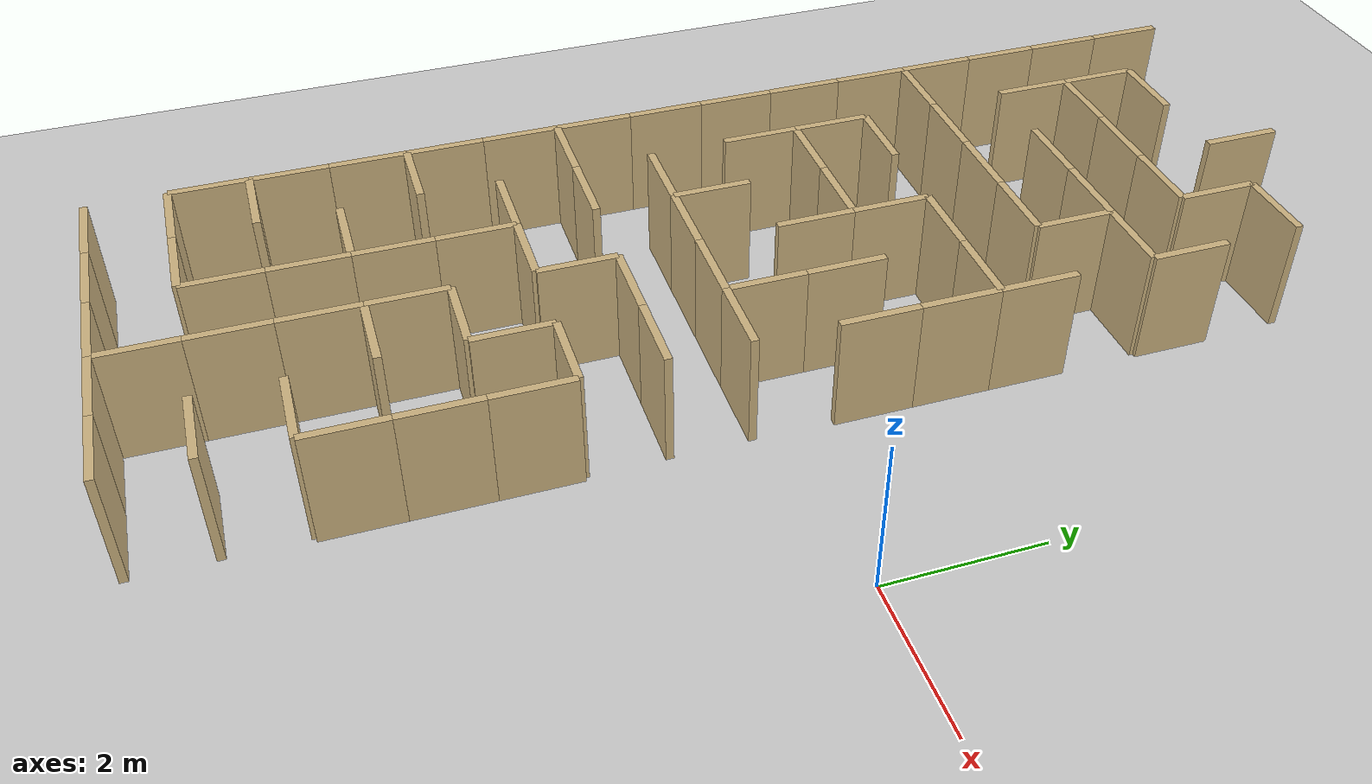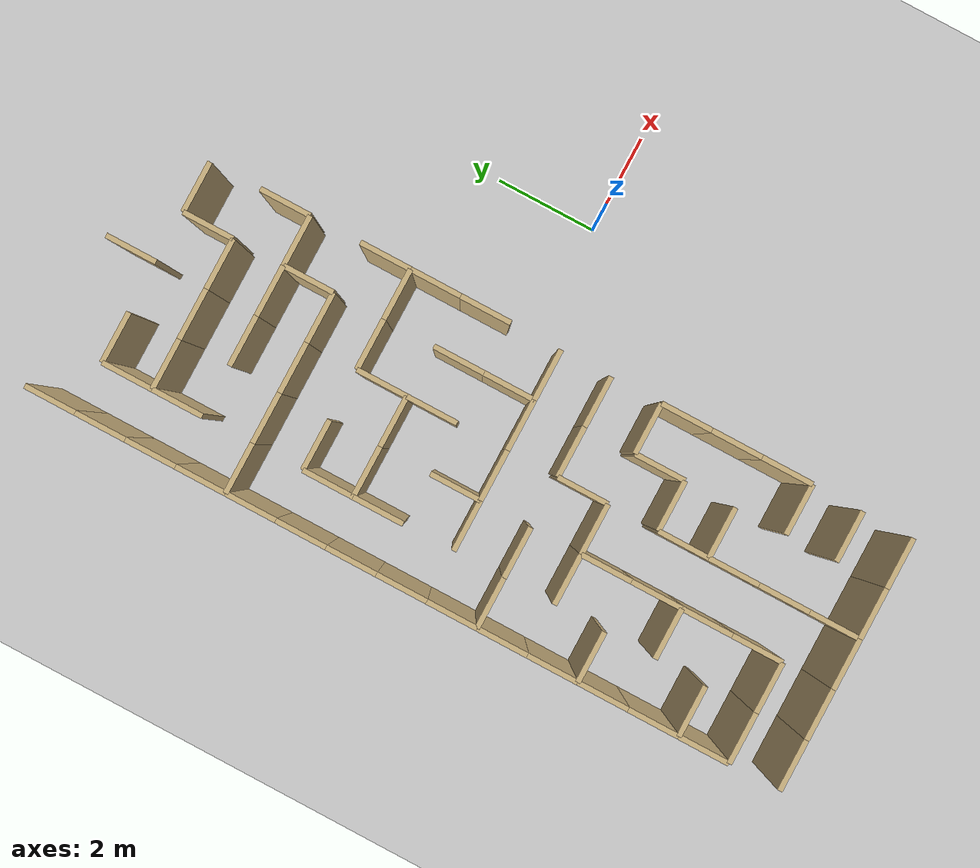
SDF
<sdf version="1.9">
 <world name="maze">
  <model name="ground_plane">
   <static>true</static>
   <link name="link">
    <collision name="collision">
     <geometry><plane><normal>0 0 1</normal><size>100 100</size></plane></geometry>
    </collision>
    <visual name="visual"><geometry><plane><normal>0 0 1</normal><size>100 100</size></plane></geometry></visual>
   </link>
  </model>
  <model name="wall_0">
   <static>true</static>
   <pose>-7.0 -7.5 0.75 0 0 0</pose>
   <link name="link">
    <collision name="collision"><geometry><box><size>1.0 0.1 1.5</size></box></geometry></collision>
    <visual name="visual">
     <geometry><box><size>1.0 0.1 1.5</size></box></geometry>
     <material>
      <ambient>0.8 0.7 0.5 1</ambient>
      <diffuse>0.8 0.7 0.5 1</diffuse>
      <specular>0.05 0.05 0.05 1</specular>
     </material>
    </visual>
   </link>
  </model>
  <model name="wall_1">
   <static>true</static>
   <pose>-6.0 -7.5 0.75 0 0 0</pose>
   <link name="link">
    <collision name="collision"><geometry><box><size>1.0 0.1 1.5</size></box></geometry></collision>
    <visual name="visual">
     <geometry><box><size>1.0 0.1 1.5</size></box></geometry>
     <material>
      <ambient>0.8 0.7 0.5 1</ambient>
      <diffuse>0.8 0.7 0.5 1</diffuse>
      <specular>0.05 0.05 0.05 1</specular>
     </material>
    </visual>
   </link>
  </model>
  <model name="wall_2">
   <static>true</static>
   <pose>-5.0 -7.5 0.75 0 0 0</pose>
   <link name="link">
    <collision name="collision"><geometry><box><size>1.0 0.1 1.5</size></box></geometry></collision>
    <visual name="visual">
     <geometry><box><size>1.0 0.1 1.5</size></box></geometry>
     <material>
      <ambient>0.8 0.7 0.5 1</ambient>
      <diffuse>0.8 0.7 0.5 1</diffuse>
      <specular>0.05 0.05 0.05 1</specular>
     </material>
    </visual>
   </link>
  </model>
  <model name="wall_3">
   <static>true</static>
   <pose>-4.0 -7.5 0.75 0 0 0</pose>
   <link name="link">
    <collision name="collision"><geometry><box><size>1.0 0.1 1.5</size></box></geometry></collision>
    <visual name="visual">
     <geometry><box><size>1.0 0.1 1.5</size></box></geometry>
     <material>
      <ambient>0.8 0.7 0.5 1</ambient>
      <diffuse>0.8 0.7 0.5 1</diffuse>
      <specular>0.05 0.05 0.05 1</specular>
     </material>
    </visual>
   </link>
  </model>
  <model name="wall_4">
   <static>true</static>
   <pose>-4.5 -7.0 0.75 0 0 0</pose>
   <link name="link">
    <collision name="collision"><geometry><box><size>0.1 1.0 1.5</size></box></geometry></collision>
    <visual name="visual">
     <geometry><box><size>0.1 1.0 1.5</size></box></geometry>
     <material>
      <ambient>0.8 0.7 0.5 1</ambient>
      <diffuse>0.8 0.7 0.5 1</diffuse>
      <specular>0.05 0.05 0.05 1</specular>
     </material>
    </visual>
   </link>
  </model>
  <model name="wall_5">
   <static>true</static>
   <pose>-3.0 -7.5 0.75 0 0 0</pose>
   <link name="link">
    <collision name="collision"><geometry><box><size>1.0 0.1 1.5</size></box></geometry></collision>
    <visual name="visual">
     <geometry><box><size>1.0 0.1 1.5</size></box></geometry>
     <material>
      <ambient>0.8 0.7 0.5 1</ambient>
      <diffuse>0.8 0.7 0.5 1</diffuse>
      <specular>0.05 0.05 0.05 1</specular>
     </material>
    </visual>
   </link>
  </model>
  <model name="wall_20">
   <static>true</static>
   <pose>-7.0 -6.5 0.75 0 0 0</pose>
   <link name="link">
    <collision name="collision"><geometry><box><size>1.0 0.1 1.5</size></box></geometry></collision>
    <visual name="visual">
     <geometry><box><size>1.0 0.1 1.5</size></box></geometry>
     <material>
      <ambient>0.8 0.7 0.5 1</ambient>
      <diffuse>0.8 0.7 0.5 1</diffuse>
      <specular>0.05 0.05 0.05 1</specular>
     </material>
    </visual>
   </link>
  </model>
  <model name="wall_21">
   <static>true</static>
   <pose>-7.5 -6.0 0.75 0 0 0</pose>
   <link name="link">
    <collision name="collision"><geometry><box><size>0.1 1.0 1.5</size></box></geometry></collision>
    <visual name="visual">
     <geometry><box><size>0.1 1.0 1.5</size></box></geometry>
     <material>
      <ambient>0.8 0.7 0.5 1</ambient>
      <diffuse>0.8 0.7 0.5 1</diffuse>
      <specular>0.05 0.05 0.05 1</specular>
     </material>
    </visual>
   </link>
  </model>
  <model name="wall_22">
   <static>true</static>
   <pose>-6.0 -6.5 0.75 0 0 0</pose>
   <link name="link">
    <collision name="collision"><geometry><box><size>1.0 0.1 1.5</size></box></geometry></collision>
    <visual name="visual">
     <geometry><box><size>1.0 0.1 1.5</size></box></geometry>
     <material>
      <ambient>0.8 0.7 0.5 1</ambient>
      <diffuse>0.8 0.7 0.5 1</diffuse>
      <specular>0.05 0.05 0.05 1</specular>
     </material>
    </visual>
   </link>
  </model>
  <model name="wall_23">
   <static>true</static>
   <pose>-5.5 -6.0 0.75 0 0 0</pose>
   <link name="link">
    <collision name="collision"><geometry><box><size>0.1 1.0 1.5</size></box></geometry></collision>
    <visual name="visual">
     <geometry><box><size>0.1 1.0 1.5</size></box></geometry>
     <material>
      <ambient>0.8 0.7 0.5 1</ambient>
      <diffuse>0.8 0.7 0.5 1</diffuse>
      <specular>0.05 0.05 0.05 1</specular>
     </material>
    </visual>
   </link>
  </model>
  <model name="wall_24">
   <static>true</static>
   <pose>-4.5 -6.0 0.75 0 0 0</pose>
   <link name="link">
    <collision name="collision"><geometry><box><size>0.1 1.0 1.5</size></box></geometry></collision>
    <visual name="visual">
     <geometry><box><size>0.1 1.0 1.5</size></box></geometry>
     <material>
      <ambient>0.8 0.7 0.5 1</ambient>
      <diffuse>0.8 0.7 0.5 1</diffuse>
      <specular>0.05 0.05 0.05 1</specular>
     </material>
    </visual>
   </link>
  </model>
  <model name="wall_25">
   <static>true</static>
   <pose>-3.0 -6.5 0.75 0 0 0</pose>
   <link name="link">
    <collision name="collision"><geometry><box><size>1.0 0.1 1.5</size></box></geometry></collision>
    <visual name="visual">
     <geometry><box><size>1.0 0.1 1.5</size></box></geometry>
     <material>
      <ambient>0.8 0.7 0.5 1</ambient>
      <diffuse>0.8 0.7 0.5 1</diffuse>
      <specular>0.05 0.05 0.05 1</specular>
     </material>
    </visual>
   </link>
  </model>
  <model name="wall_35">
   <static>true</static>
   <pose>-7.0 -5.5 0.75 0 0 0</pose>
   <link name="link">
    <collision name="collision"><geometry><box><size>1.0 0.1 1.5</size></box></geometry></collision>
    <visual name="visual">
     <geometry><box><size>1.0 0.1 1.5</size></box></geometry>
     <material>
      <ambient>0.8 0.7 0.5 1</ambient>
      <diffuse>0.8 0.7 0.5 1</diffuse>
      <specular>0.05 0.05 0.05 1</specular>
     </material>
    </visual>
   </link>
  </model>
  <model name="wall_36">
   <static>true</static>
   <pose>-7.5 -5.0 0.75 0 0 0</pose>
   <link name="link">
    <collision name="collision"><geometry><box><size>0.1 1.0 1.5</size></box></geometry></collision>
    <visual name="visual">
     <geometry><box><size>0.1 1.0 1.5</size></box></geometry>
     <material>
      <ambient>0.8 0.7 0.5 1</ambient>
      <diffuse>0.8 0.7 0.5 1</diffuse>
      <specular>0.05 0.05 0.05 1</specular>
     </material>
    </visual>
   </link>
  </model>
  <model name="wall_37">
   <static>true</static>
   <pose>-5.5 -5.0 0.75 0 0 0</pose>
   <link name="link">
    <collision name="collision"><geometry><box><size>0.1 1.0 1.5</size></box></geometry></collision>
    <visual name="visual">
     <geometry><box><size>0.1 1.0 1.5</size></box></geometry>
     <material>
      <ambient>0.8 0.7 0.5 1</ambient>
      <diffuse>0.8 0.7 0.5 1</diffuse>
      <specular>0.05 0.05 0.05 1</specular>
     </material>
    </visual>
   </link>
  </model>
  <model name="wall_38">
   <static>true</static>
   <pose>-4.5 -5.0 0.75 0 0 0</pose>
   <link name="link">
    <collision name="collision"><geometry><box><size>0.1 1.0 1.5</size></box></geometry></collision>
    <visual name="visual">
     <geometry><box><size>0.1 1.0 1.5</size></box></geometry>
     <material>
      <ambient>0.8 0.7 0.5 1</ambient>
      <diffuse>0.8 0.7 0.5 1</diffuse>
      <specular>0.05 0.05 0.05 1</specular>
     </material>
    </visual>
   </link>
  </model>
  <model name="wall_39">
   <static>true</static>
   <pose>-3.0 -5.5 0.75 0 0 0</pose>
   <link name="link">
    <collision name="collision"><geometry><box><size>1.0 0.1 1.5</size></box></geometry></collision>
    <visual name="visual">
     <geometry><box><size>1.0 0.1 1.5</size></box></geometry>
     <material>
      <ambient>0.8 0.7 0.5 1</ambient>
      <diffuse>0.8 0.7 0.5 1</diffuse>
      <specular>0.05 0.05 0.05 1</specular>
     </material>
    </visual>
   </link>
  </model>
  <model name="wall_40">
   <static>true</static>
   <pose>-2.5 -5.0 0.75 0 0 0</pose>
   <link name="link">
    <collision name="collision"><geometry><box><size>0.1 1.0 1.5</size></box></geometry></collision>
    <visual name="visual">
     <geometry><box><size>0.1 1.0 1.5</size></box></geometry>
     <material>
      <ambient>0.8 0.7 0.5 1</ambient>
      <diffuse>0.8 0.7 0.5 1</diffuse>
      <specular>0.05 0.05 0.05 1</specular>
     </material>
    </visual>
   </link>
  </model>
  <model name="wall_48">
   <static>true</static>
   <pose>-7.5 -4.0 0.75 0 0 0</pose>
   <link name="link">
    <collision name="collision"><geometry><box><size>0.1 1.0 1.5</size></box></geometry></collision>
    <visual name="visual">
     <geometry><box><size>0.1 1.0 1.5</size></box></geometry>
     <material>
      <ambient>0.8 0.7 0.5 1</ambient>
      <diffuse>0.8 0.7 0.5 1</diffuse>
      <specular>0.05 0.05 0.05 1</specular>
     </material>
    </visual>
   </link>
  </model>
  <model name="wall_49">
   <static>true</static>
   <pose>-6.0 -4.5 0.75 0 0 0</pose>
   <link name="link">
    <collision name="collision"><geometry><box><size>1.0 0.1 1.5</size></box></geometry></collision>
    <visual name="visual">
     <geometry><box><size>1.0 0.1 1.5</size></box></geometry>
     <material>
      <ambient>0.8 0.7 0.5 1</ambient>
      <diffuse>0.8 0.7 0.5 1</diffuse>
      <specular>0.05 0.05 0.05 1</specular>
     </material>
    </visual>
   </link>
  </model>
  <model name="wall_50">
   <static>true</static>
   <pose>-5.5 -4.0 0.75 0 0 0</pose>
   <link name="link">
    <collision name="collision"><geometry><box><size>0.1 1.0 1.5</size></box></geometry></collision>
    <visual name="visual">
     <geometry><box><size>0.1 1.0 1.5</size></box></geometry>
     <material>
      <ambient>0.8 0.7 0.5 1</ambient>
      <diffuse>0.8 0.7 0.5 1</diffuse>
      <specular>0.05 0.05 0.05 1</specular>
     </material>
    </visual>
   </link>
  </model>
  <model name="wall_51">
   <static>true</static>
   <pose>-4.0 -4.5 0.75 0 0 0</pose>
   <link name="link">
    <collision name="collision"><geometry><box><size>1.0 0.1 1.5</size></box></geometry></collision>
    <visual name="visual">
     <geometry><box><size>1.0 0.1 1.5</size></box></geometry>
     <material>
      <ambient>0.8 0.7 0.5 1</ambient>
      <diffuse>0.8 0.7 0.5 1</diffuse>
      <specular>0.05 0.05 0.05 1</specular>
     </material>
    </visual>
   </link>
  </model>
  <model name="wall_52">
   <static>true</static>
   <pose>-4.5 -4.0 0.75 0 0 0</pose>
   <link name="link">
    <collision name="collision"><geometry><box><size>0.1 1.0 1.5</size></box></geometry></collision>
    <visual name="visual">
     <geometry><box><size>0.1 1.0 1.5</size></box></geometry>
     <material>
      <ambient>0.8 0.7 0.5 1</ambient>
      <diffuse>0.8 0.7 0.5 1</diffuse>
      <specular>0.05 0.05 0.05 1</specular>
     </material>
    </visual>
   </link>
  </model>
  <model name="wall_53">
   <static>true</static>
   <pose>-2.5 -4.0 0.75 0 0 0</pose>
   <link name="link">
    <collision name="collision"><geometry><box><size>0.1 1.0 1.5</size></box></geometry></collision>
    <visual name="visual">
     <geometry><box><size>0.1 1.0 1.5</size></box></geometry>
     <material>
      <ambient>0.8 0.7 0.5 1</ambient>
      <diffuse>0.8 0.7 0.5 1</diffuse>
      <specular>0.05 0.05 0.05 1</specular>
     </material>
    </visual>
   </link>
  </model>
  <model name="wall_64">
   <static>true</static>
   <pose>-7.0 -3.5 0.75 0 0 0</pose>
   <link name="link">
    <collision name="collision"><geometry><box><size>1.0 0.1 1.5</size></box></geometry></collision>
    <visual name="visual">
     <geometry><box><size>1.0 0.1 1.5</size></box></geometry>
     <material>
      <ambient>0.8 0.7 0.5 1</ambient>
      <diffuse>0.8 0.7 0.5 1</diffuse>
      <specular>0.05 0.05 0.05 1</specular>
     </material>
    </visual>
   </link>
  </model>
  <model name="wall_65">
   <static>true</static>
   <pose>-7.5 -3.0 0.75 0 0 0</pose>
   <link name="link">
    <collision name="collision"><geometry><box><size>0.1 1.0 1.5</size></box></geometry></collision>
    <visual name="visual">
     <geometry><box><size>0.1 1.0 1.5</size></box></geometry>
     <material>
      <ambient>0.8 0.7 0.5 1</ambient>
      <diffuse>0.8 0.7 0.5 1</diffuse>
      <specular>0.05 0.05 0.05 1</specular>
     </material>
    </visual>
   </link>
  </model>
  <model name="wall_66">
   <static>true</static>
   <pose>-5.5 -3.0 0.75 0 0 0</pose>
   <link name="link">
    <collision name="collision"><geometry><box><size>0.1 1.0 1.5</size></box></geometry></collision>
    <visual name="visual">
     <geometry><box><size>0.1 1.0 1.5</size></box></geometry>
     <material>
      <ambient>0.8 0.7 0.5 1</ambient>
      <diffuse>0.8 0.7 0.5 1</diffuse>
      <specular>0.05 0.05 0.05 1</specular>
     </material>
    </visual>
   </link>
  </model>
  <model name="wall_67">
   <static>true</static>
   <pose>-4.0 -3.5 0.75 0 0 0</pose>
   <link name="link">
    <collision name="collision"><geometry><box><size>1.0 0.1 1.5</size></box></geometry></collision>
    <visual name="visual">
     <geometry><box><size>1.0 0.1 1.5</size></box></geometry>
     <material>
      <ambient>0.8 0.7 0.5 1</ambient>
      <diffuse>0.8 0.7 0.5 1</diffuse>
      <specular>0.05 0.05 0.05 1</specular>
     </material>
    </visual>
   </link>
  </model>
  <model name="wall_68">
   <static>true</static>
   <pose>-3.5 -3.0 0.75 0 0 0</pose>
   <link name="link">
    <collision name="collision"><geometry><box><size>0.1 1.0 1.5</size></box></geometry></collision>
    <visual name="visual">
     <geometry><box><size>0.1 1.0 1.5</size></box></geometry>
     <material>
      <ambient>0.8 0.7 0.5 1</ambient>
      <diffuse>0.8 0.7 0.5 1</diffuse>
      <specular>0.05 0.05 0.05 1</specular>
     </material>
    </visual>
   </link>
  </model>
  <model name="wall_69">
   <static>true</static>
   <pose>-2.5 -3.0 0.75 0 0 0</pose>
   <link name="link">
    <collision name="collision"><geometry><box><size>0.1 1.0 1.5</size></box></geometry></collision>
    <visual name="visual">
     <geometry><box><size>0.1 1.0 1.5</size></box></geometry>
     <material>
      <ambient>0.8 0.7 0.5 1</ambient>
      <diffuse>0.8 0.7 0.5 1</diffuse>
      <specular>0.05 0.05 0.05 1</specular>
     </material>
    </visual>
   </link>
  </model>
  <model name="wall_78">
   <static>true</static>
   <pose>-7.5 -2.0 0.75 0 0 0</pose>
   <link name="link">
    <collision name="collision"><geometry><box><size>0.1 1.0 1.5</size></box></geometry></collision>
    <visual name="visual">
     <geometry><box><size>0.1 1.0 1.5</size></box></geometry>
     <material>
      <ambient>0.8 0.7 0.5 1</ambient>
      <diffuse>0.8 0.7 0.5 1</diffuse>
      <specular>0.05 0.05 0.05 1</specular>
     </material>
    </visual>
   </link>
  </model>
  <model name="wall_79">
   <static>true</static>
   <pose>-6.0 -2.5 0.75 0 0 0</pose>
   <link name="link">
    <collision name="collision"><geometry><box><size>1.0 0.1 1.5</size></box></geometry></collision>
    <visual name="visual">
     <geometry><box><size>1.0 0.1 1.5</size></box></geometry>
     <material>
      <ambient>0.8 0.7 0.5 1</ambient>
      <diffuse>0.8 0.7 0.5 1</diffuse>
      <specular>0.05 0.05 0.05 1</specular>
     </material>
    </visual>
   </link>
  </model>
  <model name="wall_80">
   <static>true</static>
   <pose>-5.0 -2.5 0.75 0 0 0</pose>
   <link name="link">
    <collision name="collision"><geometry><box><size>1.0 0.1 1.5</size></box></geometry></collision>
    <visual name="visual">
     <geometry><box><size>1.0 0.1 1.5</size></box></geometry>
     <material>
      <ambient>0.8 0.7 0.5 1</ambient>
      <diffuse>0.8 0.7 0.5 1</diffuse>
      <specular>0.05 0.05 0.05 1</specular>
     </material>
    </visual>
   </link>
  </model>
  <model name="wall_81">
   <static>true</static>
   <pose>-4.5 -2.0 0.75 0 0 0</pose>
   <link name="link">
    <collision name="collision"><geometry><box><size>0.1 1.0 1.5</size></box></geometry></collision>
    <visual name="visual">
     <geometry><box><size>0.1 1.0 1.5</size></box></geometry>
     <material>
      <ambient>0.8 0.7 0.5 1</ambient>
      <diffuse>0.8 0.7 0.5 1</diffuse>
      <specular>0.05 0.05 0.05 1</specular>
     </material>
    </visual>
   </link>
  </model>
  <model name="wall_82">
   <static>true</static>
   <pose>-3.0 -2.5 0.75 0 0 0</pose>
   <link name="link">
    <collision name="collision"><geometry><box><size>1.0 0.1 1.5</size></box></geometry></collision>
    <visual name="visual">
     <geometry><box><size>1.0 0.1 1.5</size></box></geometry>
     <material>
      <ambient>0.8 0.7 0.5 1</ambient>
      <diffuse>0.8 0.7 0.5 1</diffuse>
      <specular>0.05 0.05 0.05 1</specular>
     </material>
    </visual>
   </link>
  </model>
  <model name="wall_94">
   <static>true</static>
   <pose>-7.0 -1.5 0.75 0 0 0</pose>
   <link name="link">
    <collision name="collision"><geometry><box><size>1.0 0.1 1.5</size></box></geometry></collision>
    <visual name="visual">
     <geometry><box><size>1.0 0.1 1.5</size></box></geometry>
     <material>
      <ambient>0.8 0.7 0.5 1</ambient>
      <diffuse>0.8 0.7 0.5 1</diffuse>
      <specular>0.05 0.05 0.05 1</specular>
     </material>
    </visual>
   </link>
  </model>
  <model name="wall_95">
   <static>true</static>
   <pose>-7.5 -1.0 0.75 0 0 0</pose>
   <link name="link">
    <collision name="collision"><geometry><box><size>0.1 1.0 1.5</size></box></geometry></collision>
    <visual name="visual">
     <geometry><box><size>0.1 1.0 1.5</size></box></geometry>
     <material>
      <ambient>0.8 0.7 0.5 1</ambient>
      <diffuse>0.8 0.7 0.5 1</diffuse>
      <specular>0.05 0.05 0.05 1</specular>
     </material>
    </visual>
   </link>
  </model>
  <model name="wall_96">
   <static>true</static>
   <pose>-6.0 -1.5 0.75 0 0 0</pose>
   <link name="link">
    <collision name="collision"><geometry><box><size>1.0 0.1 1.5</size></box></geometry></collision>
    <visual name="visual">
     <geometry><box><size>1.0 0.1 1.5</size></box></geometry>
     <material>
      <ambient>0.8 0.7 0.5 1</ambient>
      <diffuse>0.8 0.7 0.5 1</diffuse>
      <specular>0.05 0.05 0.05 1</specular>
     </material>
    </visual>
   </link>
  </model>
  <model name="wall_97">
   <static>true</static>
   <pose>-4.0 -1.5 0.75 0 0 0</pose>
   <link name="link">
    <collision name="collision"><geometry><box><size>1.0 0.1 1.5</size></box></geometry></collision>
    <visual name="visual">
     <geometry><box><size>1.0 0.1 1.5</size></box></geometry>
     <material>
      <ambient>0.8 0.7 0.5 1</ambient>
      <diffuse>0.8 0.7 0.5 1</diffuse>
      <specular>0.05 0.05 0.05 1</specular>
     </material>
    </visual>
   </link>
  </model>
  <model name="wall_98">
   <static>true</static>
   <pose>-3.0 -1.5 0.75 0 0 0</pose>
   <link name="link">
    <collision name="collision"><geometry><box><size>1.0 0.1 1.5</size></box></geometry></collision>
    <visual name="visual">
     <geometry><box><size>1.0 0.1 1.5</size></box></geometry>
     <material>
      <ambient>0.8 0.7 0.5 1</ambient>
      <diffuse>0.8 0.7 0.5 1</diffuse>
      <specular>0.05 0.05 0.05 1</specular>
     </material>
    </visual>
   </link>
  </model>
  <model name="wall_108">
   <static>true</static>
   <pose>-7.5 0.0 0.75 0 0 0</pose>
   <link name="link">
    <collision name="collision"><geometry><box><size>0.1 1.0 1.5</size></box></geometry></collision>
    <visual name="visual">
     <geometry><box><size>0.1 1.0 1.5</size></box></geometry>
     <material>
      <ambient>0.8 0.7 0.5 1</ambient>
      <diffuse>0.8 0.7 0.5 1</diffuse>
      <specular>0.05 0.05 0.05 1</specular>
     </material>
    </visual>
   </link>
  </model>
  <model name="wall_109">
   <static>true</static>
   <pose>-6.0 -0.5 0.75 0 0 0</pose>
   <link name="link">
    <collision name="collision"><geometry><box><size>1.0 0.1 1.5</size></box></geometry></collision>
    <visual name="visual">
     <geometry><box><size>1.0 0.1 1.5</size></box></geometry>
     <material>
      <ambient>0.8 0.7 0.5 1</ambient>
      <diffuse>0.8 0.7 0.5 1</diffuse>
      <specular>0.05 0.05 0.05 1</specular>
     </material>
    </visual>
   </link>
  </model>
  <model name="wall_110">
   <static>true</static>
   <pose>-5.0 -0.5 0.75 0 0 0</pose>
   <link name="link">
    <collision name="collision"><geometry><box><size>1.0 0.1 1.5</size></box></geometry></collision>
    <visual name="visual">
     <geometry><box><size>1.0 0.1 1.5</size></box></geometry>
     <material>
      <ambient>0.8 0.7 0.5 1</ambient>
      <diffuse>0.8 0.7 0.5 1</diffuse>
      <specular>0.05 0.05 0.05 1</specular>
     </material>
    </visual>
   </link>
  </model>
  <model name="wall_111">
   <static>true</static>
   <pose>-5.5 0.0 0.75 0 0 0</pose>
   <link name="link">
    <collision name="collision"><geometry><box><size>0.1 1.0 1.5</size></box></geometry></collision>
    <visual name="visual">
     <geometry><box><size>0.1 1.0 1.5</size></box></geometry>
     <material>
      <ambient>0.8 0.7 0.5 1</ambient>
      <diffuse>0.8 0.7 0.5 1</diffuse>
      <specular>0.05 0.05 0.05 1</specular>
     </material>
    </visual>
   </link>
  </model>
  <model name="wall_112">
   <static>true</static>
   <pose>-4.0 -0.5 0.75 0 0 0</pose>
   <link name="link">
    <collision name="collision"><geometry><box><size>1.0 0.1 1.5</size></box></geometry></collision>
    <visual name="visual">
     <geometry><box><size>1.0 0.1 1.5</size></box></geometry>
     <material>
      <ambient>0.8 0.7 0.5 1</ambient>
      <diffuse>0.8 0.7 0.5 1</diffuse>
      <specular>0.05 0.05 0.05 1</specular>
     </material>
    </visual>
   </link>
  </model>
  <model name="wall_113">
   <static>true</static>
   <pose>-3.0 -0.5 0.75 0 0 0</pose>
   <link name="link">
    <collision name="collision"><geometry><box><size>1.0 0.1 1.5</size></box></geometry></collision>
    <visual name="visual">
     <geometry><box><size>1.0 0.1 1.5</size></box></geometry>
     <material>
      <ambient>0.8 0.7 0.5 1</ambient>
      <diffuse>0.8 0.7 0.5 1</diffuse>
      <specular>0.05 0.05 0.05 1</specular>
     </material>
    </visual>
   </link>
  </model>
  <model name="wall_114">
   <static>true</static>
   <pose>-3.5 0.0 0.75 0 0 0</pose>
   <link name="link">
    <collision name="collision"><geometry><box><size>0.1 1.0 1.5</size></box></geometry></collision>
    <visual name="visual">
     <geometry><box><size>0.1 1.0 1.5</size></box></geometry>
     <material>
      <ambient>0.8 0.7 0.5 1</ambient>
      <diffuse>0.8 0.7 0.5 1</diffuse>
      <specular>0.05 0.05 0.05 1</specular>
     </material>
    </visual>
   </link>
  </model>
  <model name="wall_124">
   <static>true</static>
   <pose>-7.5 1.0 0.75 0 0 0</pose>
   <link name="link">
    <collision name="collision"><geometry><box><size>0.1 1.0 1.5</size></box></geometry></collision>
    <visual name="visual">
     <geometry><box><size>0.1 1.0 1.5</size></box></geometry>
     <material>
      <ambient>0.8 0.7 0.5 1</ambient>
      <diffuse>0.8 0.7 0.5 1</diffuse>
      <specular>0.05 0.05 0.05 1</specular>
     </material>
    </visual>
   </link>
  </model>
  <model name="wall_125">
   <static>true</static>
   <pose>-6.5 1.0 0.75 0 0 0</pose>
   <link name="link">
    <collision name="collision"><geometry><box><size>0.1 1.0 1.5</size></box></geometry></collision>
    <visual name="visual">
     <geometry><box><size>0.1 1.0 1.5</size></box></geometry>
     <material>
      <ambient>0.8 0.7 0.5 1</ambient>
      <diffuse>0.8 0.7 0.5 1</diffuse>
      <specular>0.05 0.05 0.05 1</specular>
     </material>
    </visual>
   </link>
  </model>
  <model name="wall_126">
   <static>true</static>
   <pose>-4.5 1.0 0.75 0 0 0</pose>
   <link name="link">
    <collision name="collision"><geometry><box><size>0.1 1.0 1.5</size></box></geometry></collision>
    <visual name="visual">
     <geometry><box><size>0.1 1.0 1.5</size></box></geometry>
     <material>
      <ambient>0.8 0.7 0.5 1</ambient>
      <diffuse>0.8 0.7 0.5 1</diffuse>
      <specular>0.05 0.05 0.05 1</specular>
     </material>
    </visual>
   </link>
  </model>
  <model name="wall_127">
   <static>true</static>
   <pose>-3.5 1.0 0.75 0 0 0</pose>
   <link name="link">
    <collision name="collision"><geometry><box><size>0.1 1.0 1.5</size></box></geometry></collision>
    <visual name="visual">
     <geometry><box><size>0.1 1.0 1.5</size></box></geometry>
     <material>
      <ambient>0.8 0.7 0.5 1</ambient>
      <diffuse>0.8 0.7 0.5 1</diffuse>
      <specular>0.05 0.05 0.05 1</specular>
     </material>
    </visual>
   </link>
  </model>
  <model name="wall_128">
   <static>true</static>
   <pose>-2.5 1.0 0.75 0 0 0</pose>
   <link name="link">
    <collision name="collision"><geometry><box><size>0.1 1.0 1.5</size></box></geometry></collision>
    <visual name="visual">
     <geometry><box><size>0.1 1.0 1.5</size></box></geometry>
     <material>
      <ambient>0.8 0.7 0.5 1</ambient>
      <diffuse>0.8 0.7 0.5 1</diffuse>
      <specular>0.05 0.05 0.05 1</specular>
     </material>
    </visual>
   </link>
  </model>
  <model name="wall_139">
   <static>true</static>
   <pose>-7.5 2.0 0.75 0 0 0</pose>
   <link name="link">
    <collision name="collision"><geometry><box><size>0.1 1.0 1.5</size></box></geometry></collision>
    <visual name="visual">
     <geometry><box><size>0.1 1.0 1.5</size></box></geometry>
     <material>
      <ambient>0.8 0.7 0.5 1</ambient>
      <diffuse>0.8 0.7 0.5 1</diffuse>
      <specular>0.05 0.05 0.05 1</specular>
     </material>
    </visual>
   </link>
  </model>
  <model name="wall_140">
   <static>true</static>
   <pose>-6.0 1.5 0.75 0 0 0</pose>
   <link name="link">
    <collision name="collision"><geometry><box><size>1.0 0.1 1.5</size></box></geometry></collision>
    <visual name="visual">
     <geometry><box><size>1.0 0.1 1.5</size></box></geometry>
     <material>
      <ambient>0.8 0.7 0.5 1</ambient>
      <diffuse>0.8 0.7 0.5 1</diffuse>
      <specular>0.05 0.05 0.05 1</specular>
     </material>
    </visual>
   </link>
  </model>
  <model name="wall_141">
   <static>true</static>
   <pose>-6.5 2.0 0.75 0 0 0</pose>
   <link name="link">
    <collision name="collision"><geometry><box><size>0.1 1.0 1.5</size></box></geometry></collision>
    <visual name="visual">
     <geometry><box><size>0.1 1.0 1.5</size></box></geometry>
     <material>
      <ambient>0.8 0.7 0.5 1</ambient>
      <diffuse>0.8 0.7 0.5 1</diffuse>
      <specular>0.05 0.05 0.05 1</specular>
     </material>
    </visual>
   </link>
  </model>
  <model name="wall_142">
   <static>true</static>
   <pose>-5.0 1.5 0.75 0 0 0</pose>
   <link name="link">
    <collision name="collision"><geometry><box><size>1.0 0.1 1.5</size></box></geometry></collision>
    <visual name="visual">
     <geometry><box><size>1.0 0.1 1.5</size></box></geometry>
     <material>
      <ambient>0.8 0.7 0.5 1</ambient>
      <diffuse>0.8 0.7 0.5 1</diffuse>
      <specular>0.05 0.05 0.05 1</specular>
     </material>
    </visual>
   </link>
  </model>
  <model name="wall_143">
   <static>true</static>
   <pose>-4.5 2.0 0.75 0 0 0</pose>
   <link name="link">
    <collision name="collision"><geometry><box><size>0.1 1.0 1.5</size></box></geometry></collision>
    <visual name="visual">
     <geometry><box><size>0.1 1.0 1.5</size></box></geometry>
     <material>
      <ambient>0.8 0.7 0.5 1</ambient>
      <diffuse>0.8 0.7 0.5 1</diffuse>
      <specular>0.05 0.05 0.05 1</specular>
     </material>
    </visual>
   </link>
  </model>
  <model name="wall_145">
   <static>true</static>
   <pose>-2.5 2.0 0.75 0 0 0</pose>
   <link name="link">
    <collision name="collision"><geometry><box><size>0.1 1.0 1.5</size></box></geometry></collision>
    <visual name="visual">
     <geometry><box><size>0.1 1.0 1.5</size></box></geometry>
     <material>
      <ambient>0.8 0.7 0.5 1</ambient>
      <diffuse>0.8 0.7 0.5 1</diffuse>
      <specular>0.05 0.05 0.05 1</specular>
     </material>
    </visual>
   </link>
  </model>
  <model name="wall_154">
   <static>true</static>
   <pose>-7.5 3.0 0.75 0 0 0</pose>
   <link name="link">
    <collision name="collision"><geometry><box><size>0.1 1.0 1.5</size></box></geometry></collision>
    <visual name="visual">
     <geometry><box><size>0.1 1.0 1.5</size></box></geometry>
     <material>
      <ambient>0.8 0.7 0.5 1</ambient>
      <diffuse>0.8 0.7 0.5 1</diffuse>
      <specular>0.05 0.05 0.05 1</specular>
     </material>
    </visual>
   </link>
  </model>
  <model name="wall_155">
   <static>true</static>
   <pose>-6.0 2.5 0.75 0 0 0</pose>
   <link name="link">
    <collision name="collision"><geometry><box><size>1.0 0.1 1.5</size></box></geometry></collision>
    <visual name="visual">
     <geometry><box><size>1.0 0.1 1.5</size></box></geometry>
     <material>
      <ambient>0.8 0.7 0.5 1</ambient>
      <diffuse>0.8 0.7 0.5 1</diffuse>
      <specular>0.05 0.05 0.05 1</specular>
     </material>
    </visual>
   </link>
  </model>
  <model name="wall_156">
   <static>true</static>
   <pose>-4.0 2.5 0.75 0 0 0</pose>
   <link name="link">
    <collision name="collision"><geometry><box><size>1.0 0.1 1.5</size></box></geometry></collision>
    <visual name="visual">
     <geometry><box><size>1.0 0.1 1.5</size></box></geometry>
     <material>
      <ambient>0.8 0.7 0.5 1</ambient>
      <diffuse>0.8 0.7 0.5 1</diffuse>
      <specular>0.05 0.05 0.05 1</specular>
     </material>
    </visual>
   </link>
  </model>
  <model name="wall_157">
   <static>true</static>
   <pose>-3.0 2.5 0.75 0 0 0</pose>
   <link name="link">
    <collision name="collision"><geometry><box><size>1.0 0.1 1.5</size></box></geometry></collision>
    <visual name="visual">
     <geometry><box><size>1.0 0.1 1.5</size></box></geometry>
     <material>
      <ambient>0.8 0.7 0.5 1</ambient>
      <diffuse>0.8 0.7 0.5 1</diffuse>
      <specular>0.05 0.05 0.05 1</specular>
     </material>
    </visual>
   </link>
  </model>
  <model name="wall_158">
   <static>true</static>
   <pose>-2.5 3.0 0.75 0 0 0</pose>
   <link name="link">
    <collision name="collision"><geometry><box><size>0.1 1.0 1.5</size></box></geometry></collision>
    <visual name="visual">
     <geometry><box><size>0.1 1.0 1.5</size></box></geometry>
     <material>
      <ambient>0.8 0.7 0.5 1</ambient>
      <diffuse>0.8 0.7 0.5 1</diffuse>
      <specular>0.05 0.05 0.05 1</specular>
     </material>
    </visual>
   </link>
  </model>
  <model name="wall_168">
   <static>true</static>
   <pose>-7.0 3.5 0.75 0 0 0</pose>
   <link name="link">
    <collision name="collision"><geometry><box><size>1.0 0.1 1.5</size></box></geometry></collision>
    <visual name="visual">
     <geometry><box><size>1.0 0.1 1.5</size></box></geometry>
     <material>
      <ambient>0.8 0.7 0.5 1</ambient>
      <diffuse>0.8 0.7 0.5 1</diffuse>
      <specular>0.05 0.05 0.05 1</specular>
     </material>
    </visual>
   </link>
  </model>
  <model name="wall_169">
   <static>true</static>
   <pose>-7.5 4.0 0.75 0 0 0</pose>
   <link name="link">
    <collision name="collision"><geometry><box><size>0.1 1.0 1.5</size></box></geometry></collision>
    <visual name="visual">
     <geometry><box><size>0.1 1.0 1.5</size></box></geometry>
     <material>
      <ambient>0.8 0.7 0.5 1</ambient>
      <diffuse>0.8 0.7 0.5 1</diffuse>
      <specular>0.05 0.05 0.05 1</specular>
     </material>
    </visual>
   </link>
  </model>
  <model name="wall_170">
   <static>true</static>
   <pose>-6.0 3.5 0.75 0 0 0</pose>
   <link name="link">
    <collision name="collision"><geometry><box><size>1.0 0.1 1.5</size></box></geometry></collision>
    <visual name="visual">
     <geometry><box><size>1.0 0.1 1.5</size></box></geometry>
     <material>
      <ambient>0.8 0.7 0.5 1</ambient>
      <diffuse>0.8 0.7 0.5 1</diffuse>
      <specular>0.05 0.05 0.05 1</specular>
     </material>
    </visual>
   </link>
  </model>
  <model name="wall_171">
   <static>true</static>
   <pose>-5.0 3.5 0.75 0 0 0</pose>
   <link name="link">
    <collision name="collision"><geometry><box><size>1.0 0.1 1.5</size></box></geometry></collision>
    <visual name="visual">
     <geometry><box><size>1.0 0.1 1.5</size></box></geometry>
     <material>
      <ambient>0.8 0.7 0.5 1</ambient>
      <diffuse>0.8 0.7 0.5 1</diffuse>
      <specular>0.05 0.05 0.05 1</specular>
     </material>
    </visual>
   </link>
  </model>
  <model name="wall_172">
   <static>true</static>
   <pose>-4.0 3.5 0.75 0 0 0</pose>
   <link name="link">
    <collision name="collision"><geometry><box><size>1.0 0.1 1.5</size></box></geometry></collision>
    <visual name="visual">
     <geometry><box><size>1.0 0.1 1.5</size></box></geometry>
     <material>
      <ambient>0.8 0.7 0.5 1</ambient>
      <diffuse>0.8 0.7 0.5 1</diffuse>
      <specular>0.05 0.05 0.05 1</specular>
     </material>
    </visual>
   </link>
  </model>
  <model name="wall_173">
   <static>true</static>
   <pose>-3.5 4.0 0.75 0 0 0</pose>
   <link name="link">
    <collision name="collision"><geometry><box><size>0.1 1.0 1.5</size></box></geometry></collision>
    <visual name="visual">
     <geometry><box><size>0.1 1.0 1.5</size></box></geometry>
     <material>
      <ambient>0.8 0.7 0.5 1</ambient>
      <diffuse>0.8 0.7 0.5 1</diffuse>
      <specular>0.05 0.05 0.05 1</specular>
     </material>
    </visual>
   </link>
  </model>
  <model name="wall_183">
   <static>true</static>
   <pose>-7.5 5.0 0.75 0 0 0</pose>
   <link name="link">
    <collision name="collision"><geometry><box><size>0.1 1.0 1.5</size></box></geometry></collision>
    <visual name="visual">
     <geometry><box><size>0.1 1.0 1.5</size></box></geometry>
     <material>
      <ambient>0.8 0.7 0.5 1</ambient>
      <diffuse>0.8 0.7 0.5 1</diffuse>
      <specular>0.05 0.05 0.05 1</specular>
     </material>
    </visual>
   </link>
  </model>
  <model name="wall_184">
   <static>true</static>
   <pose>-6.5 5.0 0.75 0 0 0</pose>
   <link name="link">
    <collision name="collision"><geometry><box><size>0.1 1.0 1.5</size></box></geometry></collision>
    <visual name="visual">
     <geometry><box><size>0.1 1.0 1.5</size></box></geometry>
     <material>
      <ambient>0.8 0.7 0.5 1</ambient>
      <diffuse>0.8 0.7 0.5 1</diffuse>
      <specular>0.05 0.05 0.05 1</specular>
     </material>
    </visual>
   </link>
  </model>
  <model name="wall_185">
   <static>true</static>
   <pose>-5.0 4.5 0.75 0 0 0</pose>
   <link name="link">
    <collision name="collision"><geometry><box><size>1.0 0.1 1.5</size></box></geometry></collision>
    <visual name="visual">
     <geometry><box><size>1.0 0.1 1.5</size></box></geometry>
     <material>
      <ambient>0.8 0.7 0.5 1</ambient>
      <diffuse>0.8 0.7 0.5 1</diffuse>
      <specular>0.05 0.05 0.05 1</specular>
     </material>
    </visual>
   </link>
  </model>
  <model name="wall_186">
   <static>true</static>
   <pose>-4.0 4.5 0.75 0 0 0</pose>
   <link name="link">
    <collision name="collision"><geometry><box><size>1.0 0.1 1.5</size></box></geometry></collision>
    <visual name="visual">
     <geometry><box><size>1.0 0.1 1.5</size></box></geometry>
     <material>
      <ambient>0.8 0.7 0.5 1</ambient>
      <diffuse>0.8 0.7 0.5 1</diffuse>
      <specular>0.05 0.05 0.05 1</specular>
     </material>
    </visual>
   </link>
  </model>
  <model name="wall_187">
   <static>true</static>
   <pose>-3.0 4.5 0.75 0 0 0</pose>
   <link name="link">
    <collision name="collision"><geometry><box><size>1.0 0.1 1.5</size></box></geometry></collision>
    <visual name="visual">
     <geometry><box><size>1.0 0.1 1.5</size></box></geometry>
     <material>
      <ambient>0.8 0.7 0.5 1</ambient>
      <diffuse>0.8 0.7 0.5 1</diffuse>
      <specular>0.05 0.05 0.05 1</specular>
     </material>
    </visual>
   </link>
  </model>
  <model name="wall_188">
   <static>true</static>
   <pose>-2.5 5.0 0.75 0 0 0</pose>
   <link name="link">
    <collision name="collision"><geometry><box><size>0.1 1.0 1.5</size></box></geometry></collision>
    <visual name="visual">
     <geometry><box><size>0.1 1.0 1.5</size></box></geometry>
     <material>
      <ambient>0.8 0.7 0.5 1</ambient>
      <diffuse>0.8 0.7 0.5 1</diffuse>
      <specular>0.05 0.05 0.05 1</specular>
     </material>
    </visual>
   </link>
  </model>
  <model name="wall_199">
   <static>true</static>
   <pose>-7.5 6.0 0.75 0 0 0</pose>
   <link name="link">
    <collision name="collision"><geometry><box><size>0.1 1.0 1.5</size></box></geometry></collision>
    <visual name="visual">
     <geometry><box><size>0.1 1.0 1.5</size></box></geometry>
     <material>
      <ambient>0.8 0.7 0.5 1</ambient>
      <diffuse>0.8 0.7 0.5 1</diffuse>
      <specular>0.05 0.05 0.05 1</specular>
     </material>
    </visual>
   </link>
  </model>
  <model name="wall_200">
   <static>true</static>
   <pose>-6.0 5.5 0.75 0 0 0</pose>
   <link name="link">
    <collision name="collision"><geometry><box><size>1.0 0.1 1.5</size></box></geometry></collision>
    <visual name="visual">
     <geometry><box><size>1.0 0.1 1.5</size></box></geometry>
     <material>
      <ambient>0.8 0.7 0.5 1</ambient>
      <diffuse>0.8 0.7 0.5 1</diffuse>
      <specular>0.05 0.05 0.05 1</specular>
     </material>
    </visual>
   </link>
  </model>
  <model name="wall_201">
   <static>true</static>
   <pose>-6.5 6.0 0.75 0 0 0</pose>
   <link name="link">
    <collision name="collision"><geometry><box><size>0.1 1.0 1.5</size></box></geometry></collision>
    <visual name="visual">
     <geometry><box><size>0.1 1.0 1.5</size></box></geometry>
     <material>
      <ambient>0.8 0.7 0.5 1</ambient>
      <diffuse>0.8 0.7 0.5 1</diffuse>
      <specular>0.05 0.05 0.05 1</specular>
     </material>
    </visual>
   </link>
  </model>
  <model name="wall_202">
   <static>true</static>
   <pose>-5.0 5.5 0.75 0 0 0</pose>
   <link name="link">
    <collision name="collision"><geometry><box><size>1.0 0.1 1.5</size></box></geometry></collision>
    <visual name="visual">
     <geometry><box><size>1.0 0.1 1.5</size></box></geometry>
     <material>
      <ambient>0.8 0.7 0.5 1</ambient>
      <diffuse>0.8 0.7 0.5 1</diffuse>
      <specular>0.05 0.05 0.05 1</specular>
     </material>
    </visual>
   </link>
  </model>
  <model name="wall_203">
   <static>true</static>
   <pose>-4.0 5.5 0.75 0 0 0</pose>
   <link name="link">
    <collision name="collision"><geometry><box><size>1.0 0.1 1.5</size></box></geometry></collision>
    <visual name="visual">
     <geometry><box><size>1.0 0.1 1.5</size></box></geometry>
     <material>
      <ambient>0.8 0.7 0.5 1</ambient>
      <diffuse>0.8 0.7 0.5 1</diffuse>
      <specular>0.05 0.05 0.05 1</specular>
     </material>
    </visual>
   </link>
  </model>
  <model name="wall_204">
   <static>true</static>
   <pose>-3.5 6.0 0.75 0 0 0</pose>
   <link name="link">
    <collision name="collision"><geometry><box><size>0.1 1.0 1.5</size></box></geometry></collision>
    <visual name="visual">
     <geometry><box><size>0.1 1.0 1.5</size></box></geometry>
     <material>
      <ambient>0.8 0.7 0.5 1</ambient>
      <diffuse>0.8 0.7 0.5 1</diffuse>
      <specular>0.05 0.05 0.05 1</specular>
     </material>
    </visual>
   </link>
  </model>
  <model name="wall_213">
   <static>true</static>
   <pose>-7.5 7.0 0.75 0 0 0</pose>
   <link name="link">
    <collision name="collision"><geometry><box><size>0.1 1.0 1.5</size></box></geometry></collision>
    <visual name="visual">
     <geometry><box><size>0.1 1.0 1.5</size></box></geometry>
     <material>
      <ambient>0.8 0.7 0.5 1</ambient>
      <diffuse>0.8 0.7 0.5 1</diffuse>
      <specular>0.05 0.05 0.05 1</specular>
     </material>
    </visual>
   </link>
  </model>
  <model name="wall_214">
   <static>true</static>
   <pose>-6.0 6.5 0.75 0 0 0</pose>
   <link name="link">
    <collision name="collision"><geometry><box><size>1.0 0.1 1.5</size></box></geometry></collision>
    <visual name="visual">
     <geometry><box><size>1.0 0.1 1.5</size></box></geometry>
     <material>
      <ambient>0.8 0.7 0.5 1</ambient>
      <diffuse>0.8 0.7 0.5 1</diffuse>
      <specular>0.05 0.05 0.05 1</specular>
     </material>
    </visual>
   </link>
  </model>
  <model name="wall_215">
   <static>true</static>
   <pose>-4.5 7.0 0.75 0 0 0</pose>
   <link name="link">
    <collision name="collision"><geometry><box><size>0.1 1.0 1.5</size></box></geometry></collision>
    <visual name="visual">
     <geometry><box><size>0.1 1.0 1.5</size></box></geometry>
     <material>
      <ambient>0.8 0.7 0.5 1</ambient>
      <diffuse>0.8 0.7 0.5 1</diffuse>
      <specular>0.05 0.05 0.05 1</specular>
     </material>
    </visual>
   </link>
  </model>
  <model name="wall_216">
   <static>true</static>
   <pose>-3.0 6.5 0.75 0 0 0</pose>
   <link name="link">
    <collision name="collision"><geometry><box><size>1.0 0.1 1.5</size></box></geometry></collision>
    <visual name="visual">
     <geometry><box><size>1.0 0.1 1.5</size></box></geometry>
     <material>
      <ambient>0.8 0.7 0.5 1</ambient>
      <diffuse>0.8 0.7 0.5 1</diffuse>
      <specular>0.05 0.05 0.05 1</specular>
     </material>
    </visual>
   </link>
  </model>
 </world>
</sdf>
